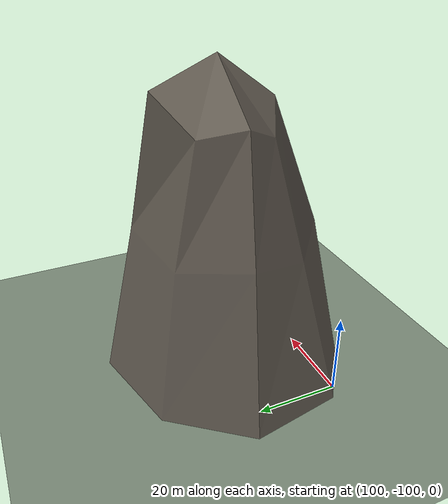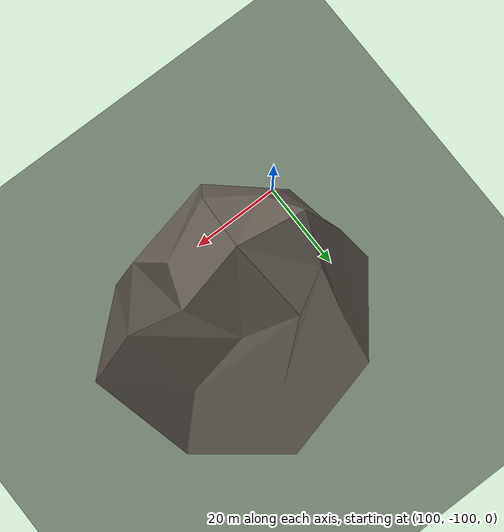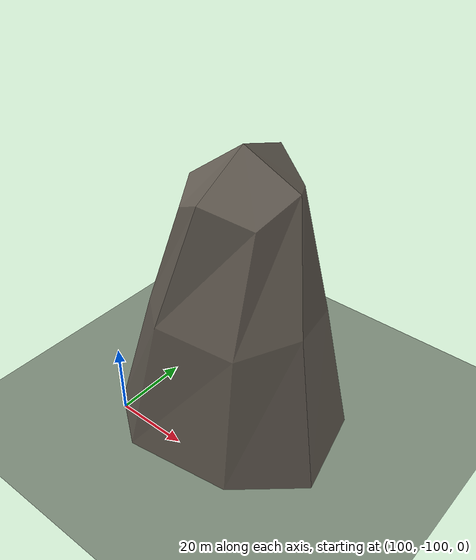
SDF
<?xml version="1.0"?>
<sdf version="1.9">
  <world name="rock_demo">
    <physics name="1ms" type="ignore">
      <max_step_size>0.001</max_step_size>
      <real_time_factor>1.0</real_time_factor>
    </physics>

    <plugin filename="gz-sim-physics-system" name="gz::sim::systems::Physics"/>
    <plugin filename="gz-sim-user-commands-system" name="gz::sim::systems::UserCommands"/>
    <plugin filename="gz-sim-scene-broadcaster-system" name="gz::sim::systems::SceneBroadcaster"/>

    <scene>
      <ambient>0.7 0.7 0.7</ambient>
      <background>0.8 0.82 0.86</background>
      <sky>true</sky>
    </scene>

    <light type="directional" name="sun">
      <cast_shadows>true</cast_shadows>
      <pose>0 0 200 0 0 0</pose>
      <diffuse>0.8 0.78 0.72 1</diffuse>
      <specular>0.2 0.2 0.2 1</specular>
      <attenuation>
        <range>1000</range>
        <constant>0.9</constant>
        <linear>0.01</linear>
        <quadratic>0.001</quadratic>
      </attenuation>
      <direction>-0.5 0.2 -0.84</direction>
    </light>

    <model name="ground_plane">
      <static>true</static>
      <link name="ground_link">
        <collision name="collision">
          <geometry>
            <plane>
              <normal>0 0 1</normal>
              <size>500 500</size>
            </plane>
          </geometry>
        </collision>
        <visual name="visual">
          <geometry>
            <plane>
              <normal>0 0 1</normal>
              <size>500 500</size>
            </plane>
          </geometry>
          <material>
            <ambient>0.38 0.43 0.38 1</ambient>
            <diffuse>0.48 0.54 0.47 1</diffuse>
          </material>
        </visual>
      </link>
    </model>

    <include>
      <uri>model://rock_demo_spire</uri>
      <name>rock_demo_spire</name>
      <pose>125 -80 0 0 0 0</pose>
    </include>
  </world>
</sdf>

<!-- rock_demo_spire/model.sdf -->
<sdf version="1.9">
  <model name="rock_demo_spire">
    <static>true</static>
    <pose>0 0 0 0 0 0</pose>
    <link name="rock_demo_spire_link">
      <pose>0 0 0 0 0 0</pose>
      <collision name="rock_demo_spire_collision">
        <geometry>
          <mesh>
            <uri>model://rock_demo_spire/meshes/rock_demo_spire.obj</uri>
            <scale>1 1 1</scale>
          </mesh>
        </geometry>
      </collision>
      <visual name="rock_demo_spire_visual">
        <geometry>
          <mesh>
            <uri>model://rock_demo_spire/meshes/rock_demo_spire.obj</uri>
            <scale>1 1 1</scale>
          </mesh>
        </geometry>
        <material>
          <ambient>0.26 0.24 0.22 1</ambient>
          <diffuse>0.42 0.39 0.35 1</diffuse>
          <specular>0.08 0.08 0.07 1</specular>
        </material>
      </visual>
    </link>
  </model>
</sdf>
